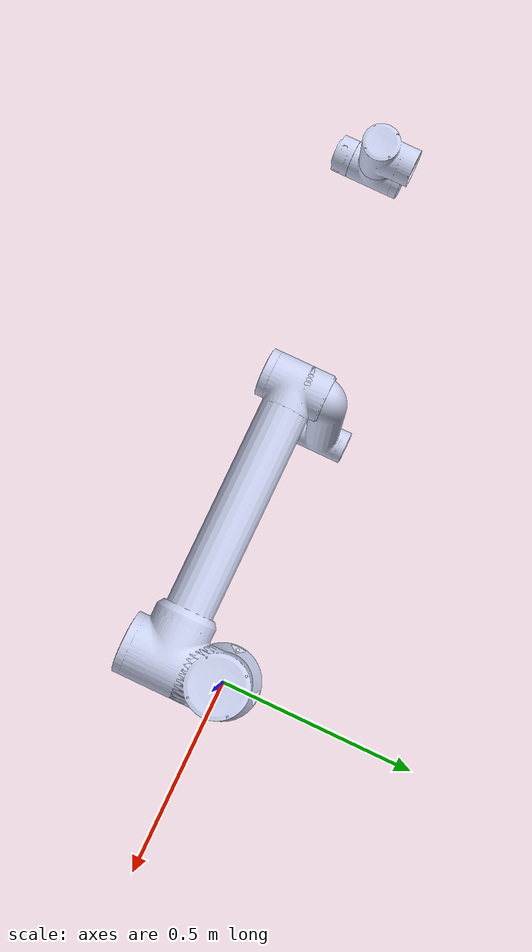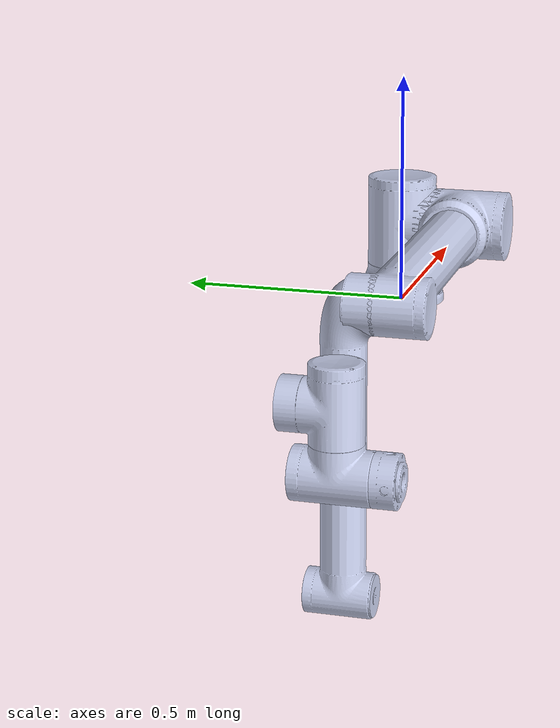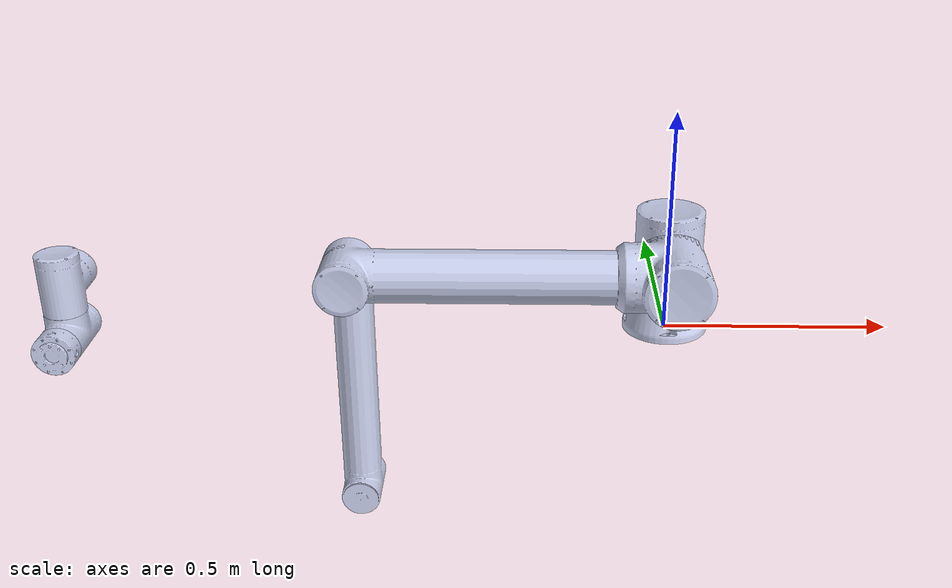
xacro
<?xml version="1.0" encoding="utf-8"?>
<robot
  name="FR10-V5.0.SLDASM">

  <link name="world"/>
  <joint name="world" type="fixed">
    <parent link="world"/>
    <child link="base_link"/>
  </joint>

  <link
    name="base_link">
    <inertial>
      <origin
        xyz="-0.00037779 0.035824 0.00035123"
        rpy="0 0 0" />
      <mass
        value="0.73773" />
      <inertia
        ixx="0.0026261"
        ixy="-8.5597E-06"
        ixz="-1.1085E-05"
        iyy="0.0044464"
        iyz="8.0719E-06"
        izz="0.0026257" />
    </inertial>
    <visual>
      <origin
        xyz="0 0 0"
        rpy="0 0 0" />
      <geometry>
        <mesh
          filename="package://frcobot_description/meshes/fr10/visual/base_link.DAE" />
      </geometry>
      <material
        name="">
        <color
          rgba="0.79216 0.81961 0.93333 1" />
      </material>
    </visual>
    <collision>
      <origin
        xyz="0 0 0"
        rpy="0 0 0" />
      <geometry>
        <mesh
          filename="package://frcobot_description/meshes/fr10/collision/base_link.STL" />
      </geometry>
    </collision>
  </link>
  <link
    name="shoulder_Link">
    <inertial>
      <origin
        xyz="-1.0816E-07 -0.13473 -0.0047771"
        rpy="0 0 0" />
      <mass
        value="3.8977" />
      <inertia
        ixx="0.018741"
        ixy="5.0033E-08"
        ixz="9.2604E-08"
        iyy="0.012373"
        iyz="1.6387E-05"
        izz="0.018267" />
    </inertial>
    <visual>
      <origin
        xyz="0 0 0"
        rpy="0 3.14159 3.14159" />
      <geometry>
        <mesh
          filename="package://frcobot_description/meshes/fr10/visual/shoulder_Link.DAE" />
      </geometry>
      <material
        name="">
        <color
          rgba="0.79216 0.81961 0.93333 1" />
      </material>
    </visual>
    <collision>
      <origin
        xyz="0 0 0"
        rpy="0 0 0" />
      <geometry>
        <mesh
          filename="package://frcobot_description/meshes/fr10/collision/shoulder_Link.STL" />
      </geometry>
    </collision>
  </link>
  <joint
    name="j1"
    type="revolute">
    <origin
      xyz="0 0 0.045908"
      rpy="-1.5708 3.14159 3.14159" />
    <parent
      link="base_link" />
    <child
      link="shoulder_Link" />
    <axis
      xyz="0 1 0" />
    <limit
      lower="-3.0543261"
      upper="3.0543261"
      effort="150"
      velocity="3.15" />
    <calibration
      rising="0"
      falling="0" />
    <dynamics
      damping="0"
      friction="0" />
    <safety_controller
      soft_upper_limit="3.0543261"
      soft_lower_limit="-3.0543261"
      k_position="100.0"
      k_velocity="40.0" />
  </joint>
  <link
    name="upperarm_Link">
    <inertial>
      <origin
        xyz="-1.2243E-07 0.28754 -0.13462"
        rpy="0 0 0" />
      <mass
        value="11.568" />
      <inertia
        ixx="0.18366"
        ixy="-1.1858E-08"
        ixz="8.4371E-08"
        iyy="0.03371"
        iyz="-8.597E-06"
        izz="0.17531" />
    </inertial>
    <visual>
      <origin
        xyz="0 0 0"
        rpy="0 0 0" />
      <geometry>
        <mesh
          filename="package://frcobot_description/meshes/fr10/visual/upperarm_Link.DAE" />
      </geometry>
      <material
        name="">
        <color
          rgba="0.79216 0.81961 0.93333 1" />
      </material>
    </visual>
    <collision>
      <origin
        xyz="0 0 0"
        rpy="0 0 0" />
      <geometry>
        <mesh
          filename="package://frcobot_description/meshes/fr10/collision/upperarm_Link.STL" />
      </geometry>
    </collision>
  </link>
  <joint
    name="j2"
    type="revolute">
    <origin
      xyz="0 0.134 -0.05"
      rpy="0 0 1.570793" />
    <parent
      link="shoulder_Link" />
    <child
      link="upperarm_Link" />
    <axis
      xyz="0 0 1" />
    <limit
      lower="-4.6251"
      upper="1.4835"
      effort="150"
      velocity="3.15" />
    <calibration
      rising="0"
      falling="0" />
    <dynamics
      damping="0"
      friction="0" />
    <safety_controller
      soft_upper_limit="1.4835298"
      soft_lower_limit="-4.6251225"
      k_position="100"
      k_velocity="40" />
  </joint>
  <link
    name="forearm_Link">
    <inertial>
      <origin
        xyz="-7.3696E-07 0.42863 0.0061272"
        rpy="0 0 0" />
      <mass
        value="1.5774" />
      <inertia
        ixx="0.012832"
        ixy="-7.5164E-09"
        ixz="2.0819E-10"
        iyy="0.0031275"
        iyz="-8.569E-05"
        izz="0.01198" />
    </inertial>
    <visual>
      <origin
        xyz="0 0 0"
        rpy="0 3.14159 0" />
      <geometry>
        <mesh
          filename="package://frcobot_description/meshes/fr10/visual/forearm_Link.DAE" />
      </geometry>
      <material
        name="">
        <color
          rgba="0.79216 0.81961 0.93333 1" />
      </material>
    </visual>
    <collision>
      <origin
        xyz="0 0 0"
        rpy="0 0 0" />
      <geometry>
        <mesh
          filename="package://frcobot_description/meshes/fr10/collision/forearm_Link.STL" />
      </geometry>
    </collision>
  </link>
  <joint
    name="j3"
    type="revolute">
    <origin
      xyz="0 0.7 0.101"
      rpy="0 0 0" />
    <parent
      link="upperarm_Link" />
    <child
      link="forearm_Link" />
    <axis
      xyz="0 0 1" />
    <limit
      lower="-2.8274"
      upper="2.8274"
      effort="150"
      velocity="3.15" />
    <calibration
      rising="0"
      falling="0" />
    <dynamics
      damping="0"
      friction="0" />
    <safety_controller
      soft_upper_limit="2.8274"
      soft_lower_limit="-2.8274"
      k_position="100"
      k_velocity="40" />
  </joint>
  <link
    name="wrist1_Link">
    <inertial>
      <origin
        xyz="1.119E-07 -0.0030015 0.074852"
        rpy="0 0 0" />
      <mass
        value="1.1074" />
      <inertia
        ixx="0.0019683"
        ixy="2.6898E-08"
        ixz="-6.9297E-09"
        iyy="0.0011013"
        iyz="3.8797E-06"
        izz="0.0020283" />
    </inertial>
    <visual>
      <origin
        xyz="0 0 0"
        rpy="0 0 0" />
      <geometry>
        <mesh
          filename="package://frcobot_description/meshes/fr10/visual/wrist1_Link.DAE" />
      </geometry>
      <material
        name="">
        <color
          rgba="0.79216 0.81961 0.93333 1" />
      </material>
    </visual>
    <collision>
      <origin
        xyz="0 0 0"
        rpy="0 0 0" />
      <geometry>
        <mesh
          filename="package://frcobot_description/meshes/fr10/collision/wrist1_Link.STL" />
      </geometry>
    </collision>
  </link>
  <joint
    name="j4"
    type="revolute">
    <origin
      xyz="0 0.586 0.054"
      rpy="0 0 1.570793" />
    <parent
      link="forearm_Link" />
    <child
      link="wrist1_Link" />
    <axis
      xyz="0 0 1" />
    <limit
      lower="-4.6251"
      upper="1.4835"
      effort="28"
      velocity="3.2" />
    <calibration
      rising="0"
      falling="0" />
    <dynamics
      damping="0"
      friction="0" />
    <safety_controller
      soft_upper_limit="1.4835298"
      soft_lower_limit="-4.6251225"
      k_position="100"
      k_velocity="40" />
  </joint>
  <link
    name="wrist2_Link">
    <inertial>
      <origin
        xyz="-0.058347 0.0037159 -0.0044844"
        rpy="0 0 0" />
      <mass
        value="0.89805" />
      <inertia
        ixx="0.0018083"
        ixy="3.8829E-06"
        ixz="-2.3592E-06"
        iyy="0.00097125"
        iyz="3.0557E-07"
        izz="0.0018386" />
    </inertial>
    <visual>
      <origin
        xyz="0 0 0"
        rpy="0 0 0" />
      <geometry>
        <mesh
          filename="package://frcobot_description/meshes/fr10/visual/wrist2_Link.DAE" />
      </geometry>
      <material
        name="">
        <color
          rgba="0.79216 0.81961 0.93333 1" />
      </material>
    </visual>
    <collision>
      <origin
        xyz="0 0 0"
        rpy="0 0 0" />
      <geometry>
        <mesh
          filename="package://frcobot_description/meshes/fr10/collision/wrist2_Link.STL" />
      </geometry>
    </collision>
  </link>
  <joint
    name="j5"
    type="revolute">
    <origin
      xyz="0 0.174 0.091"
      rpy="-1.5708 0 1.4981" />
    <parent
      link="wrist1_Link" />
    <child
      link="wrist2_Link" />
    <axis
      xyz="0.99706 0 0.076642" />
    <limit
      lower="-3.0543"
      upper="3.0543"
      effort="28"
      velocity="3.2" />
    <calibration
      rising="0"
      falling="0" />
    <dynamics
      damping="0"
      friction="0" />
    <safety_controller
      soft_upper_limit="3.0543261"
      soft_lower_limit="-3.0543261"
      k_position="100"
      k_velocity="40" />
  </joint>
  <link
    name="wrist3_Link">
    <inertial>
      <origin
        xyz="-1.8098E-05 0.022586 -2.1629E-05"
        rpy="0 0 0" />
      <mass
        value="0.24186" />
      <inertia
        ixx="0.00015143"
        ixy="9.9865E-08"
        ixz="7.787E-08"
        iyy="0.00024022"
        iyz="6.6716E-08"
        izz="0.00015134" />
    </inertial>
    <visual>
      <origin
        xyz="0 0 0"
        rpy="0 0 0" />
      <geometry>
        <mesh
          filename="package://frcobot_description/meshes/fr10/visual/wrist3_Link.DAE" />
      </geometry>
      <material
        name="">
        <color
          rgba="0.79216 0.81961 0.93333 1" />
      </material>
    </visual>
    <collision>
      <origin
        xyz="0 0 0"
        rpy="0 0 0" />
      <geometry>
        <mesh
          filename="package://frcobot_description/meshes/fr10/collision/wrist3_Link.STL" />
      </geometry>
    </collision>
  </link>
  <joint
    name="j6"
    type="revolute">
    <origin
      xyz="-0.060457 -0.0602 -0.0046473"
      rpy="-3.1416 2.54 0" />
    <parent
      link="wrist2_Link" />
    <child
      link="wrist3_Link" />
    <axis
      xyz="0 1 0" />
    <limit
      lower="-3.0543"
      upper="3.0543"
      effort="28"
      velocity="3.2" />
    <calibration
      rising="0"
      falling="0" />
    <dynamics
      damping="0"
      friction="0" />
    <safety_controller
      soft_upper_limit="3.0543261"
      soft_lower_limit="-3.0543261"
      k_position="100"
      k_velocity="40" />
  </joint>
</robot>
